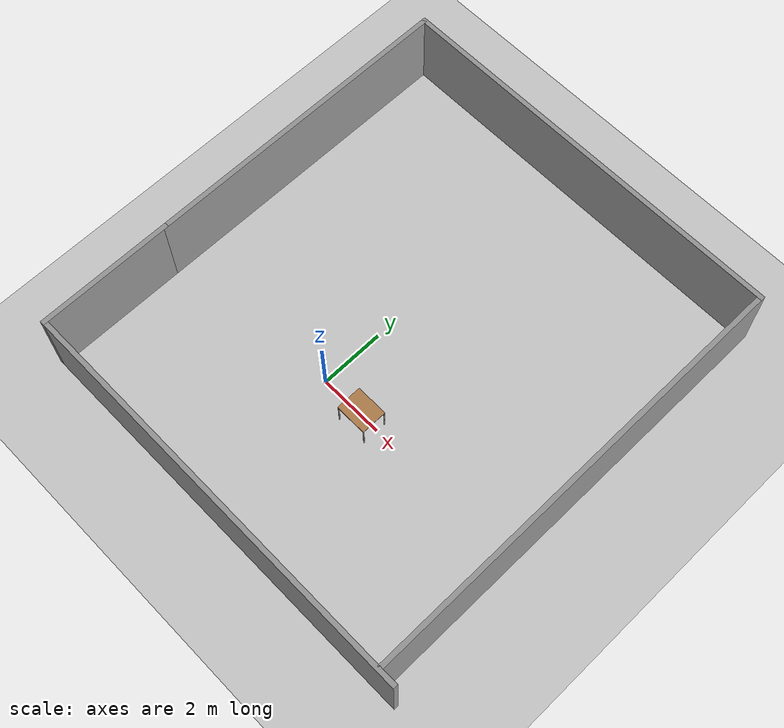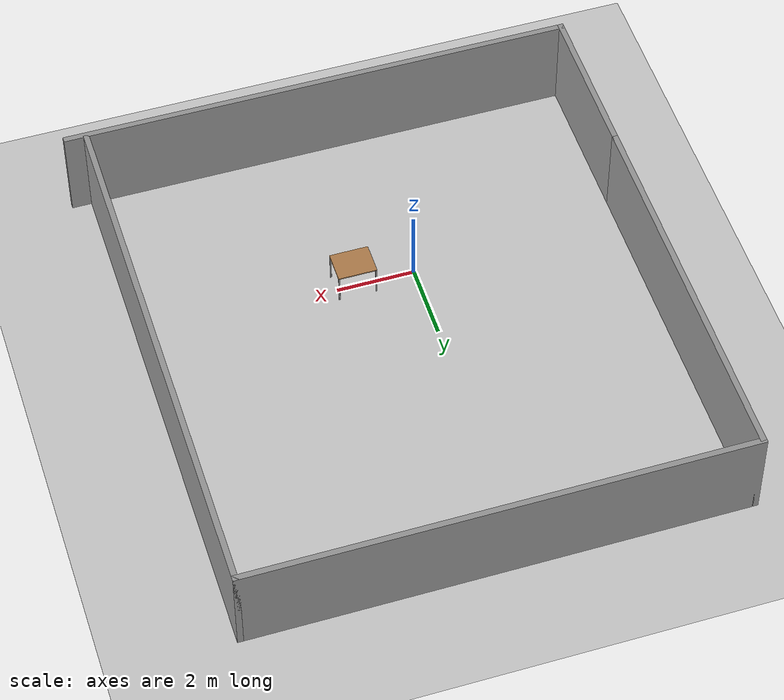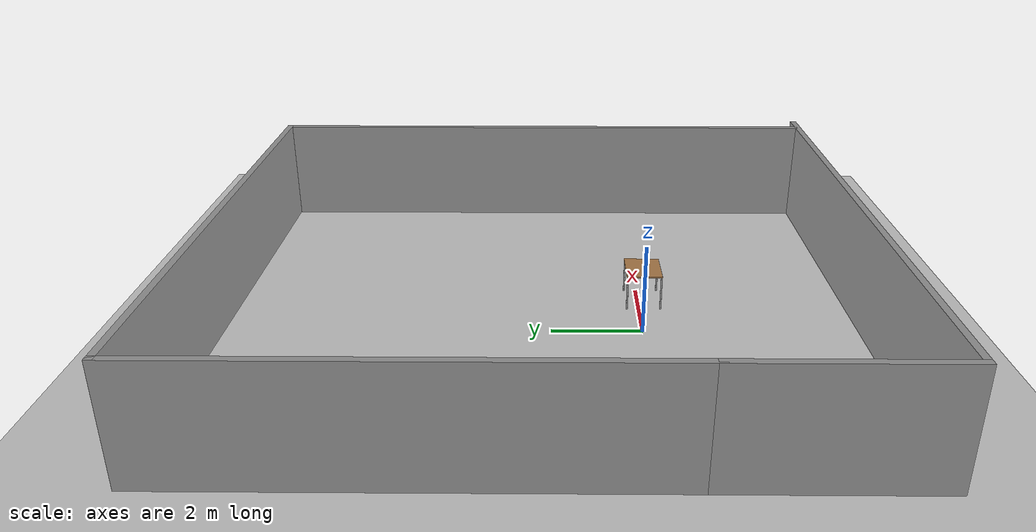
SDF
<sdf version="1.7">
 <world name="default">
  <light name="sun" type="directional">
   <pose>0 0 10 0 -0 0</pose>
   <diffuse>0.8 0.8 0.8 1</diffuse>
   <specular>0.2 0.2 0.2 1</specular>
   <attenuation>
    <range>1000</range>
    <constant>0.9</constant>
    <linear>0.01</linear>
    <quadratic>0.001</quadratic>
   </attenuation>
   <direction>-0.5 0.1 -0.9</direction>
   <spot><inner_angle>0</inner_angle><outer_angle>0</outer_angle><falloff>0</falloff></spot>
  </light>
  <model name="ground_plane">
   <static>1</static>
   <link name="link">
    <collision name="collision">
     <geometry><plane><normal>0 0 1</normal><size>100 100</size></plane></geometry>
     <surface><friction><ode><mu>100</mu><mu2>50</mu2></ode></friction></surface>
    </collision>
    <visual name="visual">
     <cast_shadows>0</cast_shadows>
     <geometry><plane><normal>0 0 1</normal><size>100 100</size></plane></geometry>
     <material>
      <script><uri>file://media/materials/scripts/gazebo.material</uri><name>Gazebo/Grey</name></script>
     </material>
    </visual>
   </link>
  </model>
  <gravity>0 0 -9.8</gravity>
  <magnetic_field>6e-06 2.3e-05 -4.2e-05</magnetic_field>
  <atmosphere type="adiabatic"/>
  <physics type="ode">
   <max_step_size>0.001</max_step_size>
   <real_time_factor>1</real_time_factor>
   <real_time_update_rate>1000</real_time_update_rate>
  </physics>
  <scene><ambient>0.4 0.4 0.4 1</ambient><background>0.7 0.7 0.7 1</background><shadows>1</shadows></scene>
  <audio><device>default</device></audio>
  <spherical_coordinates>
   <surface_model>EARTH_WGS84</surface_model>
   <latitude_deg>0</latitude_deg>
   <longitude_deg>0</longitude_deg>
   <elevation>0</elevation>
   <heading_deg>0</heading_deg>
  </spherical_coordinates>
  <model name="Untitled">
   <pose>1.05 2.225 0 0 -0 0</pose>
   <link name="Wall_1">
    <collision name="Wall_1_Collision">
     <geometry><box><size>4.25 0.15 2.5</size></box></geometry>
     <pose>0 0 1.25 0 -0 0</pose>
    </collision>
    <visual name="Wall_1_Visual">
     <pose>0 0 1.25 0 -0 0</pose>
     <geometry><box><size>4.25 0.15 2.5</size></box></geometry>
     <material>
      <script><uri>file://media/materials/scripts/gazebo.material</uri><name>Gazebo/Grey</name></script>
      <ambient>1 1 1 1</ambient>
     </material>
     <meta><layer>0</layer></meta>
    </visual>
    <pose>-6.55 -4.925 0 0 -0 -1.5708</pose>
   </link>
   <link name="Wall_2">
    <collision name="Wall_2_Collision">
     <geometry><box><size>13.25 0.15 2.5</size></box></geometry>
     <pose>0 0 1.25 0 -0 0</pose>
    </collision>
    <visual name="Wall_2_Visual">
     <pose>0 0 1.25 0 -0 0</pose>
     <geometry><box><size>13.25 0.15 2.5</size></box></geometry>
     <material>
      <script><uri>file://media/materials/scripts/gazebo.material</uri><name>Gazebo/Grey</name></script>
      <ambient>1 1 1 1</ambient>
     </material>
     <meta><layer>0</layer></meta>
    </visual>
    <pose>0 -6.975 0 0 -0 0</pose>
   </link>
   <link name="Wall_4">
    <collision name="Wall_4_Collision">
     <geometry><box><size>10 0.15 2.5</size></box></geometry>
     <pose>0 0 1.25 0 -0 0</pose>
    </collision>
    <visual name="Wall_4_Visual">
     <pose>0 0 1.25 0 -0 0</pose>
     <geometry><box><size>10 0.15 2.5</size></box></geometry>
     <material>
      <script><uri>file://media/materials/scripts/gazebo.material</uri><name>Gazebo/Grey</name></script>
      <ambient>1 1 1 1</ambient>
     </material>
     <meta><layer>0</layer></meta>
    </visual>
    <pose>-6.55 2.05 0 0 -0 1.5708</pose>
   </link>
   <link name="Wall_5">
    <collision name="Wall_5_Collision">
     <geometry><box><size>12.75 0.15 2.5</size></box></geometry>
     <pose>0 0 1.25 0 -0 0</pose>
    </collision>
    <visual name="Wall_5_Visual">
     <pose>0 0 1.25 0 -0 0</pose>
     <geometry><box><size>12.75 0.15 2.5</size></box></geometry>
     <material>
      <script><uri>file://media/materials/scripts/gazebo.material</uri><name>Gazebo/Grey</name></script>
      <ambient>1 1 1 1</ambient>
     </material>
     <meta><layer>0</layer></meta>
    </visual>
    <pose>-0.25 6.975 0 0 -0 0</pose>
   </link>
   <link name="Wall_6">
    <collision name="Wall_6_Collision">
     <geometry><box><size>14 0.15 2.5</size></box></geometry>
     <pose>0 0 1.25 0 -0 0</pose>
    </collision>
    <visual name="Wall_6_Visual">
     <pose>0 0 1.25 0 -0 0</pose>
     <geometry><box><size>14 0.15 2.5</size></box></geometry>
     <material>
      <script><uri>file://media/materials/scripts/gazebo.material</uri><name>Gazebo/Grey</name></script>
      <ambient>1 1 1 1</ambient>
     </material>
     <meta><layer>0</layer></meta>
    </visual>
    <pose>6.05 0.049999 0 0 -0 -1.5708</pose>
   </link>
   <static>1</static>
  </model>
  <model name="table">
   <static>1</static>
   <link name="link">
    <collision name="surface">
     <pose>0 0 0.8 0 -0 0</pose>
     <geometry><box><size>1 0.8 0.03</size></box></geometry>
    </collision>
    <visual name="visual1">
     <pose>0 0 0.8 0 -0 0</pose>
     <geometry><box><size>1 0.8 0.03</size></box></geometry>
     <material>
      <script><uri>file://media/materials/scripts/gazebo.material</uri><name>Gazebo/Wood</name></script>
     </material>
    </visual>
    <collision name="front_left_leg">
     <pose>0.48 0.38 0.4 0 -0 0</pose>
     <geometry><cylinder><radius>0.02</radius><length>0.8</length></cylinder></geometry>
    </collision>
    <visual name="front_left_leg">
     <pose>0.48 0.38 0.4 0 -0 0</pose>
     <geometry><cylinder><radius>0.02</radius><length>0.8</length></cylinder></geometry>
     <material>
      <script><uri>file://media/materials/scripts/gazebo.material</uri><name>Gazebo/Grey</name></script>
     </material>
    </visual>
    <collision name="front_right_leg">
     <pose>0.48 -0.38 0.4 0 -0 0</pose>
     <geometry><cylinder><radius>0.02</radius><length>0.8</length></cylinder></geometry>
    </collision>
    <visual name="front_right_leg">
     <pose>0.48 -0.38 0.4 0 -0 0</pose>
     <geometry><cylinder><radius>0.02</radius><length>0.8</length></cylinder></geometry>
     <material>
      <script><uri>file://media/materials/scripts/gazebo.material</uri><name>Gazebo/Grey</name></script>
     </material>
    </visual>
    <collision name="back_right_leg">
     <pose>-0.48 -0.38 0.4 0 -0 0</pose>
     <geometry><cylinder><radius>0.02</radius><length>0.8</length></cylinder></geometry>
    </collision>
    <visual name="back_right_leg">
     <pose>-0.48 -0.38 0.4 0 -0 0</pose>
     <geometry><cylinder><radius>0.02</radius><length>0.8</length></cylinder></geometry>
     <material>
      <script><uri>file://media/materials/scripts/gazebo.material</uri><name>Gazebo/Grey</name></script>
     </material>
    </visual>
    <collision name="back_left_leg">
     <pose>-0.48 0.38 0.4 0 -0 0</pose>
     <geometry><cylinder><radius>0.02</radius><length>0.8</length></cylinder></geometry>
    </collision>
    <visual name="back_left_leg">
     <pose>-0.48 0.38 0.4 0 -0 0</pose>
     <geometry><cylinder><radius>0.02</radius><length>0.8</length></cylinder></geometry>
     <material>
      <script><uri>file://media/materials/scripts/gazebo.material</uri><name>Gazebo/Grey</name></script>
     </material>
    </visual>
    <velocity_decay><linear>0</linear><angular>0</angular></velocity_decay>
   </link>
   <pose>1.54752 -0.097405 0 0 -0 0</pose>
  </model>
 </world>
</sdf>
